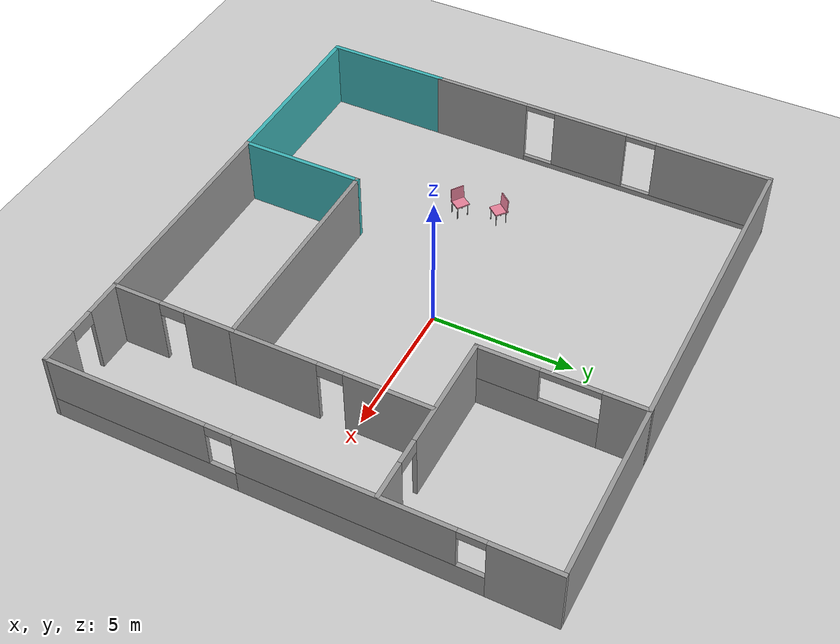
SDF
<sdf version="1.6">
 <world name="default">
  <model name="ground_plane">
   <static>1</static>
   <link name="link">
    <collision name="collision">
     <geometry><plane><normal>0 0 1</normal><size>100 100</size></plane></geometry>
     <surface>
      <contact><collide_bitmask>65535</collide_bitmask></contact>
      <friction><ode><mu>100</mu><mu2>50</mu2></ode></friction>
     </surface>
    </collision>
    <visual name="visual">
     <cast_shadows>0</cast_shadows>
     <geometry><plane><normal>0 0 1</normal><size>100 100</size></plane></geometry>
     <material>
      <script><uri>file://media/materials/scripts/gazebo.material</uri><name>Gazebo/Grey</name></script>
     </material>
    </visual>
   </link>
  </model>
  <model name="federicos_house">
   <pose>0.00944 -0.095201 0 0 -0 0</pose>
   <link name="Wall_11">
    <pose>8.85021 -0.00256 0 0 -0 -1.5708</pose>
    <visual name="Wall_11_Visual_0">
     <pose>-7.33583 0 1.25 0 -0 0</pose>
     <geometry><box><size>2.32835 0.15 2.5</size></box></geometry>
     <material>
      <script><uri>file://media/materials/scripts/gazebo.material</uri><name>Gazebo/Grey</name></script>
      <ambient>0.952941 0.952941 0.952941 1</ambient>
     </material>
     <meta><layer>0</layer></meta>
    </visual>
    <collision name="Wall_11_Collision_0">
     <geometry><box><size>2.32835 0.15 2.5</size></box></geometry>
     <pose>-7.33583 0 1.25 0 -0 0</pose>
    </collision>
    <visual name="Wall_11_Visual_1">
     <pose>-2.14939 0 0.45 0 -0 0</pose>
     <geometry><box><size>8.04452 0.15 0.9</size></box></geometry>
     <material>
      <script><uri>file://media/materials/scripts/gazebo.material</uri><name>Gazebo/Grey</name></script>
      <ambient>0.952941 0.952941 0.952941 1</ambient>
     </material>
     <meta><layer>0</layer></meta>
    </visual>
    <collision name="Wall_11_Collision_1">
     <geometry><box><size>8.04452 0.15 0.9</size></box></geometry>
     <pose>-2.14939 0 0.45 0 -0 0</pose>
    </collision>
    <visual name="Wall_11_Visual_2">
     <pose>5.18643 0 0.4 0 -0 0</pose>
     <geometry><box><size>6.62713 0.15 0.8</size></box></geometry>
     <material>
      <script><uri>file://media/materials/scripts/gazebo.material</uri><name>Gazebo/Grey</name></script>
      <ambient>0.952941 0.952941 0.952941 1</ambient>
     </material>
     <meta><layer>0</layer></meta>
    </visual>
    <collision name="Wall_11_Collision_2">
     <geometry><box><size>6.62713 0.15 0.8</size></box></geometry>
     <pose>5.18643 0 0.4 0 -0 0</pose>
    </collision>
    <visual name="Wall_11_Visual_3">
     <pose>5.63643 0 1.65 0 -0 0</pose>
     <geometry><box><size>5.72713 0.15 1.7</size></box></geometry>
     <material>
      <script><uri>file://media/materials/scripts/gazebo.material</uri><name>Gazebo/Grey</name></script>
      <ambient>0.952941 0.952941 0.952941 1</ambient>
     </material>
     <meta><layer>0</layer></meta>
    </visual>
    <collision name="Wall_11_Collision_3">
     <geometry><box><size>5.72713 0.15 1.7</size></box></geometry>
     <pose>5.63643 0 1.65 0 -0 0</pose>
    </collision>
    <visual name="Wall_11_Visual_4">
     <pose>-1.69939 0 1.7 0 -0 0</pose>
     <geometry><box><size>7.14452 0.15 1.6</size></box></geometry>
     <material>
      <script><uri>file://media/materials/scripts/gazebo.material</uri><name>Gazebo/Grey</name></script>
      <ambient>0.952941 0.952941 0.952941 1</ambient>
     </material>
     <meta><layer>0</layer></meta>
    </visual>
    <collision name="Wall_11_Collision_4">
     <geometry><box><size>7.14452 0.15 1.6</size></box></geometry>
     <pose>-1.69939 0 1.7 0 -0 0</pose>
    </collision>
    <visual name="Wall_11_Visual_5">
     <pose>2.32287 0 2.3 0 -0 0</pose>
     <geometry><box><size>0.9 0.15 0.4</size></box></geometry>
     <material>
      <script><uri>file://media/materials/scripts/gazebo.material</uri><name>Gazebo/Grey</name></script>
      <ambient>0.952941 0.952941 0.952941 1</ambient>
     </material>
     <meta><layer>0</layer></meta>
    </visual>
    <collision name="Wall_11_Collision_5">
     <geometry><box><size>0.9 0.15 0.4</size></box></geometry>
     <pose>2.32287 0 2.3 0 -0 0</pose>
    </collision>
    <visual name="Wall_11_Visual_6">
     <pose>-5.72165 0 2.35 0 -0 0</pose>
     <geometry><box><size>0.9 0.15 0.3</size></box></geometry>
     <material>
      <script><uri>file://media/materials/scripts/gazebo.material</uri><name>Gazebo/Grey</name></script>
      <ambient>0.952941 0.952941 0.952941 1</ambient>
     </material>
     <meta><layer>0</layer></meta>
    </visual>
    <collision name="Wall_11_Collision_6">
     <geometry><box><size>0.9 0.15 0.3</size></box></geometry>
     <pose>-5.72165 0 2.35 0 -0 0</pose>
    </collision>
   </link>
   <link name="Wall_12">
    <pose>3.17521 -8.42756 0 0 -0 3.14159</pose>
    <visual name="Wall_12_Visual_0">
     <pose>-5.0744 0 1.25 0 -0 0</pose>
     <geometry><box><size>1.35119 0.15 2.5</size></box></geometry>
     <material>
      <script><uri>file://media/materials/scripts/gazebo.material</uri><name>Gazebo/Grey</name></script>
      <ambient>0.952941 0.952941 0.952941 1</ambient>
     </material>
     <meta><layer>0</layer></meta>
    </visual>
    <collision name="Wall_12_Collision_0">
     <geometry><box><size>1.35119 0.15 2.5</size></box></geometry>
     <pose>-5.0744 0 1.25 0 -0 0</pose>
    </collision>
    <visual name="Wall_12_Visual_1">
     <pose>1.1256 0 1.25 0 -0 0</pose>
     <geometry><box><size>9.24881 0.15 2.5</size></box></geometry>
     <material>
      <script><uri>file://media/materials/scripts/gazebo.material</uri><name>Gazebo/Grey</name></script>
      <ambient>0.952941 0.952941 0.952941 1</ambient>
     </material>
     <meta><layer>0</layer></meta>
    </visual>
    <collision name="Wall_12_Collision_1">
     <geometry><box><size>9.24881 0.15 2.5</size></box></geometry>
     <pose>1.1256 0 1.25 0 -0 0</pose>
    </collision>
    <visual name="Wall_12_Visual_2">
     <pose>-3.94881 0 2.25 0 -0 0</pose>
     <geometry><box><size>0.9 0.15 0.5</size></box></geometry>
     <material>
      <script><uri>file://media/materials/scripts/gazebo.material</uri><name>Gazebo/Grey</name></script>
      <ambient>0.952941 0.952941 0.952941 1</ambient>
     </material>
     <meta><layer>0</layer></meta>
    </visual>
    <collision name="Wall_12_Collision_2">
     <geometry><box><size>0.9 0.15 0.5</size></box></geometry>
     <pose>-3.94881 0 2.25 0 -0 0</pose>
    </collision>
   </link>
   <link name="Wall_13">
    <collision name="Wall_13_Collision">
     <geometry><box><size>6.5 0.15 2.5</size></box></geometry>
     <pose>0 0 1.25 0 -0 0</pose>
    </collision>
    <visual name="Wall_13_Visual">
     <pose>0 0 1.25 0 -0 0</pose>
     <geometry><box><size>6.5 0.15 2.5</size></box></geometry>
     <material>
      <script><uri>file://media/materials/scripts/gazebo.material</uri><name>Gazebo/Grey</name></script>
      <ambient>0.239216 0.705882 0.713726 1</ambient>
     </material>
     <meta><layer>0</layer></meta>
    </visual>
    <pose>-5.67479 -8.42756 0 0 -0 3.14159</pose>
   </link>
   <link name="Wall_18">
    <collision name="Wall_18_Collision">
     <geometry><box><size>4.5 0.15 2.5</size></box></geometry>
     <pose>0 0 1.25 0 -0 0</pose>
    </collision>
    <visual name="Wall_18_Visual">
     <pose>0 0 1.25 0 -0 0</pose>
     <geometry><box><size>4.5 0.15 2.5</size></box></geometry>
     <material>
      <script><uri>file://media/materials/scripts/gazebo.material</uri><name>Gazebo/Grey</name></script>
      <ambient>0.239216 0.705882 0.713726 1</ambient>
     </material>
     <meta><layer>0</layer></meta>
    </visual>
    <pose>-8.84979 -6.25256 0 0 -0 1.5708</pose>
   </link>
   <link name="Wall_19">
    <pose>-8.85 2.17222 0 0 -0 1.57083</pose>
    <visual name="Wall_19_Visual_0">
     <pose>-4.55138 0 1.25 0 -0 0</pose>
     <geometry><box><size>3.54679 0.15 2.5</size></box></geometry>
     <material>
      <script><uri>file://media/materials/scripts/gazebo.material</uri><name>Gazebo/Grey</name></script>
      <ambient>0.952941 0.952941 0.952941 1</ambient>
     </material>
     <meta><layer>0</layer></meta>
    </visual>
    <collision name="Wall_19_Collision_0">
     <geometry><box><size>3.54679 0.15 2.5</size></box></geometry>
     <pose>-4.55138 0 1.25 0 -0 0</pose>
    </collision>
    <visual name="Wall_19_Visual_1">
     <pose>1.7734 0 0.1 0 -0 0</pose>
     <geometry><box><size>9.10277 0.15 0.2</size></box></geometry>
     <material>
      <script><uri>file://media/materials/scripts/gazebo.material</uri><name>Gazebo/Grey</name></script>
      <ambient>0.952941 0.952941 0.952941 1</ambient>
     </material>
     <meta><layer>0</layer></meta>
    </visual>
    <collision name="Wall_19_Collision_1">
     <geometry><box><size>9.10277 0.15 0.2</size></box></geometry>
     <pose>1.7734 0 0.1 0 -0 0</pose>
    </collision>
    <visual name="Wall_19_Visual_2">
     <pose>-0.320942 0 1.35 0 -0 0</pose>
     <geometry><box><size>2.71409 0.15 2.3</size></box></geometry>
     <material>
      <script><uri>file://media/materials/scripts/gazebo.material</uri><name>Gazebo/Grey</name></script>
      <ambient>0.952941 0.952941 0.952941 1</ambient>
     </material>
     <meta><layer>0</layer></meta>
    </visual>
    <collision name="Wall_19_Collision_2">
     <geometry><box><size>2.71409 0.15 2.3</size></box></geometry>
     <pose>-0.320942 0 1.35 0 -0 0</pose>
    </collision>
    <visual name="Wall_19_Visual_3">
     <pose>4.23044 0 1.35 0 -0 0</pose>
     <geometry><box><size>4.18867 0.15 2.3</size></box></geometry>
     <material>
      <script><uri>file://media/materials/scripts/gazebo.material</uri><name>Gazebo/Grey</name></script>
      <ambient>0.952941 0.952941 0.952941 1</ambient>
     </material>
     <meta><layer>0</layer></meta>
    </visual>
    <collision name="Wall_19_Collision_3">
     <geometry><box><size>4.18867 0.15 2.3</size></box></geometry>
     <pose>4.23044 0 1.35 0 -0 0</pose>
    </collision>
    <visual name="Wall_19_Visual_4">
     <pose>-2.22799 0 2.4 0 -0 0</pose>
     <geometry><box><size>1.1 0.15 0.2</size></box></geometry>
     <material>
      <script><uri>file://media/materials/scripts/gazebo.material</uri><name>Gazebo/Grey</name></script>
      <ambient>0.952941 0.952941 0.952941 1</ambient>
     </material>
     <meta><layer>0</layer></meta>
    </visual>
    <collision name="Wall_19_Collision_4">
     <geometry><box><size>1.1 0.15 0.2</size></box></geometry>
     <pose>-2.22799 0 2.4 0 -0 0</pose>
    </collision>
    <visual name="Wall_19_Visual_5">
     <pose>1.58611 0 2.4 0 -0 0</pose>
     <geometry><box><size>1.1 0.15 0.2</size></box></geometry>
     <material>
      <script><uri>file://media/materials/scripts/gazebo.material</uri><name>Gazebo/Grey</name></script>
      <ambient>0.952941 0.952941 0.952941 1</ambient>
     </material>
     <meta><layer>0</layer></meta>
    </visual>
    <collision name="Wall_19_Collision_5">
     <geometry><box><size>1.1 0.15 0.2</size></box></geometry>
     <pose>1.58611 0 2.4 0 -0 0</pose>
    </collision>
   </link>
   <link name="Wall_20">
    <collision name="Wall_20_Collision">
     <geometry><box><size>17.85 0.15 2.5</size></box></geometry>
     <pose>0 0 1.25 0 -0 0</pose>
    </collision>
    <visual name="Wall_20_Visual">
     <pose>0 0 1.25 0 -0 0</pose>
     <geometry><box><size>17.85 0.15 2.5</size></box></geometry>
     <material>
      <script><uri>file://media/materials/scripts/gazebo.material</uri><name>Gazebo/Grey</name></script>
      <ambient>0.952941 0.952941 0.952941 1</ambient>
     </material>
     <meta><layer>0</layer></meta>
    </visual>
    <pose>-0.000205 8.422 0 0 -0 0</pose>
   </link>
   <link name="Wall_22">
    <collision name="Wall_22_Collision">
     <geometry><box><size>4.5 0.15 2.5</size></box></geometry>
     <pose>0 0 1.25 0 -0 0</pose>
    </collision>
    <visual name="Wall_22_Visual">
     <pose>0 0 1.25 0 -0 0</pose>
     <geometry><box><size>4.5 0.15 2.5</size></box></geometry>
     <material>
      <script><uri>file://media/materials/scripts/gazebo.material</uri><name>Gazebo/Grey</name></script>
      <ambient>0.239216 0.705882 0.713726 1</ambient>
     </material>
     <meta><layer>0</layer></meta>
    </visual>
    <pose>-2.5 -6.25278 0 0 -0 1.57089</pose>
   </link>
   <link name="Wall_24">
    <collision name="Wall_24_Collision">
     <geometry><box><size>8 0.15 2.5</size></box></geometry>
     <pose>0 0 1.25 0 -0 0</pose>
    </collision>
    <visual name="Wall_24_Visual">
     <pose>0 0 1.25 0 -0 0</pose>
     <geometry><box><size>8 0.15 2.5</size></box></geometry>
     <material>
      <script><uri>file://media/materials/scripts/gazebo.material</uri><name>Gazebo/Grey</name></script>
      <ambient>0.952941 0.952941 0.952941 1</ambient>
     </material>
     <meta><layer>0</layer></meta>
    </visual>
    <pose>1.4248 -4.078 0 0 -0 0</pose>
   </link>
   <link name="Wall_25">
    <pose>5.3498 -6.253 0 0 -0 -1.5708</pose>
    <visual name="Wall_25_Visual_0">
     <pose>-1.34853 0 1.25 0 -0 0</pose>
     <geometry><box><size>1.80293 0.15 2.5</size></box></geometry>
     <material>
      <script><uri>file://media/materials/scripts/gazebo.material</uri><name>Gazebo/Grey</name></script>
      <ambient>0.952941 0.952941 0.952941 1</ambient>
     </material>
     <meta><layer>0</layer></meta>
    </visual>
    <collision name="Wall_25_Collision_0">
     <geometry><box><size>1.80293 0.15 2.5</size></box></geometry>
     <pose>-1.34853 0 1.25 0 -0 0</pose>
    </collision>
    <visual name="Wall_25_Visual_1">
     <pose>1.35147 0 1.25 0 -0 0</pose>
     <geometry><box><size>1.79707 0.15 2.5</size></box></geometry>
     <material>
      <script><uri>file://media/materials/scripts/gazebo.material</uri><name>Gazebo/Grey</name></script>
      <ambient>0.952941 0.952941 0.952941 1</ambient>
     </material>
     <meta><layer>0</layer></meta>
    </visual>
    <collision name="Wall_25_Collision_1">
     <geometry><box><size>1.79707 0.15 2.5</size></box></geometry>
     <pose>1.35147 0 1.25 0 -0 0</pose>
    </collision>
    <visual name="Wall_25_Visual_2">
     <pose>0.002931 0 2.25 0 -0 0</pose>
     <geometry><box><size>0.9 0.15 0.5</size></box></geometry>
     <material>
      <script><uri>file://media/materials/scripts/gazebo.material</uri><name>Gazebo/Grey</name></script>
      <ambient>0.952941 0.952941 0.952941 1</ambient>
     </material>
     <meta><layer>0</layer></meta>
    </visual>
    <collision name="Wall_25_Collision_2">
     <geometry><box><size>0.9 0.15 0.5</size></box></geometry>
     <pose>0.002931 0 2.25 0 -0 0</pose>
    </collision>
   </link>
   <link name="Wall_29">
    <pose>2.5698 5.628 0 0 -0 -1.5708</pose>
    <visual name="Wall_29_Visual_0">
     <pose>-2.0935 0 1.25 0 -0 0</pose>
     <geometry><box><size>1.563 0.15 2.5</size></box></geometry>
     <material>
      <script><uri>file://media/materials/scripts/gazebo.material</uri><name>Gazebo/Grey</name></script>
      <ambient>0.952941 0.952941 0.952941 1</ambient>
     </material>
     <meta><layer>0</layer></meta>
    </visual>
    <collision name="Wall_29_Collision_0">
     <geometry><box><size>1.563 0.15 2.5</size></box></geometry>
     <pose>-2.0935 0 1.25 0 -0 0</pose>
    </collision>
    <visual name="Wall_29_Visual_1">
     <pose>0.7815 0 0.575 0 -0 0</pose>
     <geometry><box><size>4.187 0.15 1.15</size></box></geometry>
     <material>
      <script><uri>file://media/materials/scripts/gazebo.material</uri><name>Gazebo/Grey</name></script>
      <ambient>0.952941 0.952941 0.952941 1</ambient>
     </material>
     <meta><layer>0</layer></meta>
    </visual>
    <collision name="Wall_29_Collision_1">
     <geometry><box><size>4.187 0.15 1.15</size></box></geometry>
     <pose>0.7815 0 0.575 0 -0 0</pose>
    </collision>
    <visual name="Wall_29_Visual_2">
     <pose>1.7815 0 1.825 0 -0 0</pose>
     <geometry><box><size>2.187 0.15 1.35</size></box></geometry>
     <material>
      <script><uri>file://media/materials/scripts/gazebo.material</uri><name>Gazebo/Grey</name></script>
      <ambient>0.952941 0.952941 0.952941 1</ambient>
     </material>
     <meta><layer>0</layer></meta>
    </visual>
    <collision name="Wall_29_Collision_2">
     <geometry><box><size>2.187 0.15 1.35</size></box></geometry>
     <pose>1.7815 0 1.825 0 -0 0</pose>
    </collision>
    <visual name="Wall_29_Visual_3">
     <pose>-0.312 0 2.375 0 -0 0</pose>
     <geometry><box><size>2 0.15 0.25</size></box></geometry>
     <material>
      <script><uri>file://media/materials/scripts/gazebo.material</uri><name>Gazebo/Grey</name></script>
      <ambient>0.952941 0.952941 0.952941 1</ambient>
     </material>
     <meta><layer>0</layer></meta>
    </visual>
    <collision name="Wall_29_Collision_3">
     <geometry><box><size>2 0.15 0.25</size></box></geometry>
     <pose>-0.312 0 2.375 0 -0 0</pose>
    </collision>
   </link>
   <link name="Wall_32">
    <pose>5.3498 -0.653 0 0 -0 1.5708</pose>
    <visual name="Wall_32_Visual_0">
     <pose>-1.97184 0 1.25 0 -0 0</pose>
     <geometry><box><size>3.05631 0.15 2.5</size></box></geometry>
     <material>
      <script><uri>file://media/materials/scripts/gazebo.material</uri><name>Gazebo/Grey</name></script>
      <ambient>0.952941 0.952941 0.952941 1</ambient>
     </material>
     <meta><layer>0</layer></meta>
    </visual>
    <collision name="Wall_32_Collision_0">
     <geometry><box><size>3.05631 0.15 2.5</size></box></geometry>
     <pose>-1.97184 0 1.25 0 -0 0</pose>
    </collision>
    <visual name="Wall_32_Visual_1">
     <pose>1.97816 0 1.25 0 -0 0</pose>
     <geometry><box><size>3.04369 0.15 2.5</size></box></geometry>
     <material>
      <script><uri>file://media/materials/scripts/gazebo.material</uri><name>Gazebo/Grey</name></script>
      <ambient>0.952941 0.952941 0.952941 1</ambient>
     </material>
     <meta><layer>0</layer></meta>
    </visual>
    <collision name="Wall_32_Collision_1">
     <geometry><box><size>3.04369 0.15 2.5</size></box></geometry>
     <pose>1.97816 0 1.25 0 -0 0</pose>
    </collision>
    <visual name="Wall_32_Visual_2">
     <pose>0.006313 0 2.25 0 -0 0</pose>
     <geometry><box><size>0.9 0.15 0.5</size></box></geometry>
     <material>
      <script><uri>file://media/materials/scripts/gazebo.material</uri><name>Gazebo/Grey</name></script>
      <ambient>0.952941 0.952941 0.952941 1</ambient>
     </material>
     <meta><layer>0</layer></meta>
    </visual>
    <collision name="Wall_32_Collision_2">
     <geometry><box><size>0.9 0.15 0.5</size></box></geometry>
     <pose>0.006313 0 2.25 0 -0 0</pose>
    </collision>
   </link>
   <link name="Wall_34">
    <pose>5.6948 2.828 0 0 -0 0</pose>
    <visual name="Wall_34_Visual_0">
     <pose>-1.13148 0 1.25 0 -0 0</pose>
     <geometry><box><size>4.13704 0.15 2.5</size></box></geometry>
     <material>
      <script><uri>file://media/materials/scripts/gazebo.material</uri><name>Gazebo/Grey</name></script>
      <ambient>0.827451 0.843137 0.811765 1</ambient>
     </material>
     <meta><layer>0</layer></meta>
    </visual>
    <collision name="Wall_34_Collision_0">
     <geometry><box><size>4.13704 0.15 2.5</size></box></geometry>
     <pose>-1.13148 0 1.25 0 -0 0</pose>
    </collision>
    <visual name="Wall_34_Visual_1">
     <pose>2.51852 0 1.25 0 -0 0</pose>
     <geometry><box><size>1.36296 0.15 2.5</size></box></geometry>
     <material>
      <script><uri>file://media/materials/scripts/gazebo.material</uri><name>Gazebo/Grey</name></script>
      <ambient>0.827451 0.843137 0.811765 1</ambient>
     </material>
     <meta><layer>0</layer></meta>
    </visual>
    <collision name="Wall_34_Collision_1">
     <geometry><box><size>1.36296 0.15 2.5</size></box></geometry>
     <pose>2.51852 0 1.25 0 -0 0</pose>
    </collision>
    <visual name="Wall_34_Visual_2">
     <pose>1.38704 0 2.25 0 -0 0</pose>
     <geometry><box><size>0.9 0.15 0.5</size></box></geometry>
     <material>
      <script><uri>file://media/materials/scripts/gazebo.material</uri><name>Gazebo/Grey</name></script>
      <ambient>0.827451 0.843137 0.811765 1</ambient>
     </material>
     <meta><layer>0</layer></meta>
    </visual>
    <collision name="Wall_34_Collision_2">
     <geometry><box><size>0.9 0.15 0.5</size></box></geometry>
     <pose>1.38704 0 2.25 0 -0 0</pose>
    </collision>
   </link>
   <static>1</static>
  </model>
  <model name="my_chair_0">
   <link name="link">
    <inertial>
     <mass>1</mass>
     <inertia>
      <ixx>0.166667</ixx>
      <ixy>0</ixy>
      <ixz>0</ixz>
      <iyy>0.166667</iyy>
      <iyz>0</iyz>
      <izz>0.166667</izz>
     </inertia>
    </inertial>
    <gravity>0</gravity>
    <visual name="visual">
     <geometry><box><size>0.5 0.5 0.05</size></box></geometry>
     <material>
      <script><name>Gazebo/Grey</name><uri>file://media/materials/scripts/gazebo.material</uri></script>
      <shader type="pixel"><normal_map>__default__</normal_map></shader>
      <ambient>0.9 0.5 0.6 1</ambient>
      <diffuse>0.9 0.5 0.6 1</diffuse>
      <specular>0.01 0.01 0.01 1</specular>
      <emissive>0 0 0 1</emissive>
     </material>
     <pose>0 0 0.5 0 -0 0</pose>
    </visual>
    <collision name="collision">
     <pose>0 0 0.5 0 -0 0</pose>
     <geometry><box><size>0.5 0.5 0.05</size></box></geometry>
     <surface>
      <friction>
       <ode><mu>1</mu><mu2>1</mu2><fdir1>0 0 0</fdir1><slip1>0</slip1><slip2>0</slip2></ode>
       <torsional>
        <coefficient>1</coefficient>
        <patch_radius>0</patch_radius>
        <surface_radius>0</surface_radius>
        <use_patch_radius>1</use_patch_radius>
        <ode><slip>0</slip></ode>
       </torsional>
      </friction>
      <bounce><restitution_coefficient>0</restitution_coefficient><threshold>1e+06</threshold></bounce>
      <contact>
       <collide_without_contact>0</collide_without_contact>
       <collide_without_contact_bitmask>1</collide_without_contact_bitmask>
       <collide_bitmask>1</collide_bitmask>
       <ode>
        <soft_cfm>0</soft_cfm>
        <soft_erp>0.2</soft_erp>
        <kp>1e+13</kp>
        <kd>1</kd>
        <max_vel>0.01</max_vel>
        <min_depth>0</min_depth>
       </ode>
       <bullet>
        <split_impulse>1</split_impulse>
        <split_impulse_penetration_threshold>-0.01</split_impulse_penetration_threshold>
        <soft_cfm>0</soft_cfm>
        <soft_erp>0.2</soft_erp>
        <kp>1e+13</kp>
        <kd>1</kd>
       </bullet>
      </contact>
     </surface>
    </collision>
   </link>
   <link name="link_0">
    <inertial>
     <mass>1</mass>
     <inertia><ixx>0.145833</ixx><ixy>0</ixy><ixz>0</ixz><iyy>0.145833</iyy><iyz>0</iyz><izz>0.125</izz></inertia>
    </inertial>
    <pose>-0.200315 -0.184767 -0.272701 -0 -0 -0</pose>
    <gravity>0</gravity>
    <visual name="visual">
     <pose>0 0 0.5 0 -0 0</pose>
     <geometry><cylinder><radius>0.013</radius><length>0.5</length></cylinder></geometry>
     <material>
      <lighting>1</lighting>
      <script><uri>file://media/materials/scripts/gazebo.material</uri><name>Gazebo/Grey</name></script>
      <shader type="pixel"><normal_map>__default__</normal_map></shader>
      <ambient>0.3 0.3 0.3 1</ambient>
      <diffuse>0.7 0.7 0.7 1</diffuse>
      <specular>0.01 0.01 0.01 1</specular>
      <emissive>0 0 0 1</emissive>
     </material>
    </visual>
    <collision name="collision">
     <pose>0 0 0.5 0 -0 0</pose>
     <geometry><cylinder><radius>0.013</radius><length>0.5</length></cylinder></geometry>
     <surface>
      <friction>
       <ode><mu>1</mu><mu2>1</mu2><fdir1>0 0 0</fdir1><slip1>0</slip1><slip2>0</slip2></ode>
       <torsional>
        <coefficient>1</coefficient>
        <patch_radius>0</patch_radius>
        <surface_radius>0</surface_radius>
        <use_patch_radius>1</use_patch_radius>
        <ode><slip>0</slip></ode>
       </torsional>
      </friction>
      <bounce><restitution_coefficient>0</restitution_coefficient><threshold>1e+06</threshold></bounce>
      <contact>
       <collide_without_contact>0</collide_without_contact>
       <collide_without_contact_bitmask>1</collide_without_contact_bitmask>
       <collide_bitmask>1</collide_bitmask>
       <ode>
        <soft_cfm>0</soft_cfm>
        <soft_erp>0.2</soft_erp>
        <kp>1e+13</kp>
        <kd>1</kd>
        <max_vel>0.01</max_vel>
        <min_depth>0</min_depth>
       </ode>
       <bullet>
        <split_impulse>1</split_impulse>
        <split_impulse_penetration_threshold>-0.01</split_impulse_penetration_threshold>
        <soft_cfm>0</soft_cfm>
        <soft_erp>0.2</soft_erp>
        <kp>1e+13</kp>
        <kd>1</kd>
       </bullet>
      </contact>
     </surface>
    </collision>
   </link>
   <link name="link_0_clone">
    <inertial>
     <mass>1</mass>
     <inertia><ixx>0.145833</ixx><ixy>0</ixy><ixz>0</ixz><iyy>0.145833</iyy><iyz>0</iyz><izz>0.125</izz></inertia>
    </inertial>
    <pose>-0.198839 0.194466 -0.272701 -0 -0 -0</pose>
    <gravity>0</gravity>
    <visual name="visual">
     <pose>0 0 0.5 0 -0 0</pose>
     <geometry><cylinder><radius>0.013</radius><length>0.5</length></cylinder></geometry>
     <material>
      <lighting>1</lighting>
      <script><uri>file://media/materials/scripts/gazebo.material</uri><name>Gazebo/Grey</name></script>
      <shader type="pixel"><normal_map>__default__</normal_map></shader>
      <ambient>0.3 0.3 0.3 1</ambient>
      <diffuse>0.7 0.7 0.7 1</diffuse>
      <specular>0.01 0.01 0.01 1</specular>
      <emissive>0 0 0 1</emissive>
     </material>
    </visual>
    <collision name="collision">
     <pose>0 0 0.5 0 -0 0</pose>
     <geometry><cylinder><radius>0.013</radius><length>0.5</length></cylinder></geometry>
     <surface>
      <friction>
       <ode><mu>1</mu><mu2>1</mu2><fdir1>0 0 0</fdir1><slip1>0</slip1><slip2>0</slip2></ode>
       <torsional>
        <coefficient>1</coefficient>
        <patch_radius>0</patch_radius>
        <surface_radius>0</surface_radius>
        <use_patch_radius>1</use_patch_radius>
        <ode><slip>0</slip></ode>
       </torsional>
      </friction>
      <bounce><restitution_coefficient>0</restitution_coefficient><threshold>1e+06</threshold></bounce>
      <contact>
       <collide_without_contact>0</collide_without_contact>
       <collide_without_contact_bitmask>1</collide_without_contact_bitmask>
       <collide_bitmask>1</collide_bitmask>
       <ode>
        <soft_cfm>0</soft_cfm>
        <soft_erp>0.2</soft_erp>
        <kp>1e+13</kp>
        <kd>1</kd>
        <max_vel>0.01</max_vel>
        <min_depth>0</min_depth>
       </ode>
       <bullet>
        <split_impulse>1</split_impulse>
        <split_impulse_penetration_threshold>-0.01</split_impulse_penetration_threshold>
        <soft_cfm>0</soft_cfm>
        <soft_erp>0.2</soft_erp>
        <kp>1e+13</kp>
        <kd>1</kd>
       </bullet>
      </contact>
     </surface>
    </collision>
   </link>
   <link name="link_0_clone_0">
    <inertial>
     <mass>1</mass>
     <inertia><ixx>0.145833</ixx><ixy>0</ixy><ixz>0</ixz><iyy>0.145833</iyy><iyz>0</iyz><izz>0.125</izz></inertia>
    </inertial>
    <pose>0.211914 -0.198881 -0.272701 -0 -0 -0</pose>
    <gravity>0</gravity>
    <visual name="visual">
     <pose>0 0 0.5 0 -0 0</pose>
     <geometry><cylinder><radius>0.013</radius><length>0.5</length></cylinder></geometry>
     <material>
      <lighting>1</lighting>
      <script><uri>file://media/materials/scripts/gazebo.material</uri><name>Gazebo/Grey</name></script>
      <shader type="pixel"><normal_map>__default__</normal_map></shader>
      <ambient>0.3 0.3 0.3 1</ambient>
      <diffuse>0.7 0.7 0.7 1</diffuse>
      <specular>0.01 0.01 0.01 1</specular>
      <emissive>0 0 0 1</emissive>
     </material>
    </visual>
    <collision name="collision">
     <pose>0 0 0.5 0 -0 0</pose>
     <geometry><cylinder><radius>0.013</radius><length>0.5</length></cylinder></geometry>
     <surface>
      <friction>
       <ode><mu>1</mu><mu2>1</mu2><fdir1>0 0 0</fdir1><slip1>0</slip1><slip2>0</slip2></ode>
       <torsional>
        <coefficient>1</coefficient>
        <patch_radius>0</patch_radius>
        <surface_radius>0</surface_radius>
        <use_patch_radius>1</use_patch_radius>
        <ode><slip>0</slip></ode>
       </torsional>
      </friction>
      <bounce><restitution_coefficient>0</restitution_coefficient><threshold>1e+06</threshold></bounce>
      <contact>
       <collide_without_contact>0</collide_without_contact>
       <collide_without_contact_bitmask>1</collide_without_contact_bitmask>
       <collide_bitmask>1</collide_bitmask>
       <ode>
        <soft_cfm>0</soft_cfm>
        <soft_erp>0.2</soft_erp>
        <kp>1e+13</kp>
        <kd>1</kd>
        <max_vel>0.01</max_vel>
        <min_depth>0</min_depth>
       </ode>
       <bullet>
        <split_impulse>1</split_impulse>
        <split_impulse_penetration_threshold>-0.01</split_impulse_penetration_threshold>
        <soft_cfm>0</soft_cfm>
        <soft_erp>0.2</soft_erp>
        <kp>1e+13</kp>
        <kd>1</kd>
       </bullet>
      </contact>
     </surface>
    </collision>
   </link>
   <link name="link_0_clone_1">
    <inertial>
     <mass>1</mass>
     <inertia><ixx>0.145833</ixx><ixy>0</ixy><ixz>0</ixz><iyy>0.145833</iyy><iyz>0</iyz><izz>0.125</izz></inertia>
    </inertial>
    <pose>0.207422 0.203987 -0.272701 -0 -0 -0</pose>
    <gravity>0</gravity>
    <visual name="visual">
     <pose>0 0 0.5 0 -0 0</pose>
     <geometry><cylinder><radius>0.013</radius><length>0.5</length></cylinder></geometry>
     <material>
      <lighting>1</lighting>
      <script><uri>file://media/materials/scripts/gazebo.material</uri><name>Gazebo/Grey</name></script>
      <shader type="pixel"><normal_map>__default__</normal_map></shader>
      <ambient>0.3 0.3 0.3 1</ambient>
      <diffuse>0.7 0.7 0.7 1</diffuse>
      <specular>0.01 0.01 0.01 1</specular>
      <emissive>0 0 0 1</emissive>
     </material>
    </visual>
    <collision name="collision">
     <pose>0 0 0.5 0 -0 0</pose>
     <geometry><cylinder><radius>0.013</radius><length>0.5</length></cylinder></geometry>
     <surface>
      <friction>
       <ode><mu>1</mu><mu2>1</mu2><fdir1>0 0 0</fdir1><slip1>0</slip1><slip2>0</slip2></ode>
       <torsional>
        <coefficient>1</coefficient>
        <patch_radius>0</patch_radius>
        <surface_radius>0</surface_radius>
        <use_patch_radius>1</use_patch_radius>
        <ode><slip>0</slip></ode>
       </torsional>
      </friction>
      <bounce><restitution_coefficient>0</restitution_coefficient><threshold>1e+06</threshold></bounce>
      <contact>
       <collide_without_contact>0</collide_without_contact>
       <collide_without_contact_bitmask>1</collide_without_contact_bitmask>
       <collide_bitmask>1</collide_bitmask>
       <ode>
        <soft_cfm>0</soft_cfm>
        <soft_erp>0.2</soft_erp>
        <kp>1e+13</kp>
        <kd>1</kd>
        <max_vel>0.01</max_vel>
        <min_depth>0</min_depth>
       </ode>
       <bullet>
        <split_impulse>1</split_impulse>
        <split_impulse_penetration_threshold>-0.01</split_impulse_penetration_threshold>
        <soft_cfm>0</soft_cfm>
        <soft_erp>0.2</soft_erp>
        <kp>1e+13</kp>
        <kd>1</kd>
       </bullet>
      </contact>
     </surface>
    </collision>
   </link>
   <link name="link_clone">
    <inertial>
     <mass>1</mass>
     <inertia>
      <ixx>0.166667</ixx>
      <ixy>0</ixy>
      <ixz>0</ixz>
      <iyy>0.166667</iyy>
      <iyz>0</iyz>
      <izz>0.166667</izz>
     </inertia>
    </inertial>
    <pose>-0.00806 -0.212496 0.264135 -0 -0 -0</pose>
    <gravity>0</gravity>
    <visual name="visual">
     <geometry><box><size>0.5 0.5 0.04</size></box></geometry>
     <material>
      <script><name>Gazebo/Grey</name><uri>file://media/materials/scripts/gazebo.material</uri></script>
      <shader type="pixel"><normal_map>__default__</normal_map></shader>
      <ambient>0.9 0.5 0.6 1</ambient>
      <diffuse>0.9 0.5 0.6 1</diffuse>
      <specular>0.01 0.01 0.01 1</specular>
      <emissive>0 0 0 1</emissive>
     </material>
     <pose>0 0 0.5 -1.5 0 0</pose>
    </visual>
    <collision name="collision">
     <pose>0 0 0.5 -1.5 0 0</pose>
     <geometry><box><size>0.5 0.5 0.04</size></box></geometry>
     <surface>
      <friction>
       <ode><mu>1</mu><mu2>1</mu2><fdir1>0 0 0</fdir1><slip1>0</slip1><slip2>0</slip2></ode>
       <torsional>
        <coefficient>1</coefficient>
        <patch_radius>0</patch_radius>
        <surface_radius>0</surface_radius>
        <use_patch_radius>1</use_patch_radius>
        <ode><slip>0</slip></ode>
       </torsional>
      </friction>
      <bounce><restitution_coefficient>0</restitution_coefficient><threshold>1e+06</threshold></bounce>
      <contact>
       <collide_without_contact>0</collide_without_contact>
       <collide_without_contact_bitmask>1</collide_without_contact_bitmask>
       <collide_bitmask>1</collide_bitmask>
       <ode>
        <soft_cfm>0</soft_cfm>
        <soft_erp>0.2</soft_erp>
        <kp>1e+13</kp>
        <kd>1</kd>
        <max_vel>0.01</max_vel>
        <min_depth>0</min_depth>
       </ode>
       <bullet>
        <split_impulse>1</split_impulse>
        <split_impulse_penetration_threshold>-0.01</split_impulse_penetration_threshold>
        <soft_cfm>0</soft_cfm>
        <soft_erp>0.2</soft_erp>
        <kp>1e+13</kp>
        <kd>1</kd>
       </bullet>
      </contact>
     </surface>
    </collision>
   </link>
   <static>1</static>
   <pose>-5.05341 -1.50205 0 0 0 -0.61738</pose>
  </model>
  <model name="my_chair_1">
   <link name="link">
    <inertial>
     <mass>1</mass>
     <inertia>
      <ixx>0.166667</ixx>
      <ixy>0</ixy>
      <ixz>0</ixz>
      <iyy>0.166667</iyy>
      <iyz>0</iyz>
      <izz>0.166667</izz>
     </inertia>
    </inertial>
    <gravity>0</gravity>
    <visual name="visual">
     <geometry><box><size>0.5 0.5 0.05</size></box></geometry>
     <material>
      <script><name>Gazebo/Grey</name><uri>file://media/materials/scripts/gazebo.material</uri></script>
      <shader type="pixel"><normal_map>__default__</normal_map></shader>
      <ambient>0.9 0.5 0.6 1</ambient>
      <diffuse>0.9 0.5 0.6 1</diffuse>
      <specular>0.01 0.01 0.01 1</specular>
      <emissive>0 0 0 1</emissive>
     </material>
     <pose>0 0 0.5 0 -0 0</pose>
    </visual>
    <collision name="collision">
     <pose>0 0 0.5 0 -0 0</pose>
     <geometry><box><size>0.5 0.5 0.05</size></box></geometry>
     <surface>
      <friction>
       <ode><mu>1</mu><mu2>1</mu2><fdir1>0 0 0</fdir1><slip1>0</slip1><slip2>0</slip2></ode>
       <torsional>
        <coefficient>1</coefficient>
        <patch_radius>0</patch_radius>
        <surface_radius>0</surface_radius>
        <use_patch_radius>1</use_patch_radius>
        <ode><slip>0</slip></ode>
       </torsional>
      </friction>
      <bounce><restitution_coefficient>0</restitution_coefficient><threshold>1e+06</threshold></bounce>
      <contact>
       <collide_without_contact>0</collide_without_contact>
       <collide_without_contact_bitmask>1</collide_without_contact_bitmask>
       <collide_bitmask>1</collide_bitmask>
       <ode>
        <soft_cfm>0</soft_cfm>
        <soft_erp>0.2</soft_erp>
        <kp>1e+13</kp>
        <kd>1</kd>
        <max_vel>0.01</max_vel>
        <min_depth>0</min_depth>
       </ode>
       <bullet>
        <split_impulse>1</split_impulse>
        <split_impulse_penetration_threshold>-0.01</split_impulse_penetration_threshold>
        <soft_cfm>0</soft_cfm>
        <soft_erp>0.2</soft_erp>
        <kp>1e+13</kp>
        <kd>1</kd>
       </bullet>
      </contact>
     </surface>
    </collision>
   </link>
   <link name="link_0">
    <inertial>
     <mass>1</mass>
     <inertia><ixx>0.145833</ixx><ixy>0</ixy><ixz>0</ixz><iyy>0.145833</iyy><iyz>0</iyz><izz>0.125</izz></inertia>
    </inertial>
    <pose>-0.200315 -0.184767 -0.272701 -0 -0 -0</pose>
    <gravity>0</gravity>
    <visual name="visual">
     <pose>0 0 0.5 0 -0 0</pose>
     <geometry><cylinder><radius>0.013</radius><length>0.5</length></cylinder></geometry>
     <material>
      <lighting>1</lighting>
      <script><uri>file://media/materials/scripts/gazebo.material</uri><name>Gazebo/Grey</name></script>
      <shader type="pixel"><normal_map>__default__</normal_map></shader>
      <ambient>0.3 0.3 0.3 1</ambient>
      <diffuse>0.7 0.7 0.7 1</diffuse>
      <specular>0.01 0.01 0.01 1</specular>
      <emissive>0 0 0 1</emissive>
     </material>
    </visual>
    <collision name="collision">
     <pose>0 0 0.5 0 -0 0</pose>
     <geometry><cylinder><radius>0.013</radius><length>0.5</length></cylinder></geometry>
     <surface>
      <friction>
       <ode><mu>1</mu><mu2>1</mu2><fdir1>0 0 0</fdir1><slip1>0</slip1><slip2>0</slip2></ode>
       <torsional>
        <coefficient>1</coefficient>
        <patch_radius>0</patch_radius>
        <surface_radius>0</surface_radius>
        <use_patch_radius>1</use_patch_radius>
        <ode><slip>0</slip></ode>
       </torsional>
      </friction>
      <bounce><restitution_coefficient>0</restitution_coefficient><threshold>1e+06</threshold></bounce>
      <contact>
       <collide_without_contact>0</collide_without_contact>
       <collide_without_contact_bitmask>1</collide_without_contact_bitmask>
       <collide_bitmask>1</collide_bitmask>
       <ode>
        <soft_cfm>0</soft_cfm>
        <soft_erp>0.2</soft_erp>
        <kp>1e+13</kp>
        <kd>1</kd>
        <max_vel>0.01</max_vel>
        <min_depth>0</min_depth>
       </ode>
       <bullet>
        <split_impulse>1</split_impulse>
        <split_impulse_penetration_threshold>-0.01</split_impulse_penetration_threshold>
        <soft_cfm>0</soft_cfm>
        <soft_erp>0.2</soft_erp>
        <kp>1e+13</kp>
        <kd>1</kd>
       </bullet>
      </contact>
     </surface>
    </collision>
   </link>
   <link name="link_0_clone">
    <inertial>
     <mass>1</mass>
     <inertia><ixx>0.145833</ixx><ixy>0</ixy><ixz>0</ixz><iyy>0.145833</iyy><iyz>0</iyz><izz>0.125</izz></inertia>
    </inertial>
    <pose>-0.198839 0.194466 -0.272701 -0 -0 -0</pose>
    <gravity>0</gravity>
    <visual name="visual">
     <pose>0 0 0.5 0 -0 0</pose>
     <geometry><cylinder><radius>0.013</radius><length>0.5</length></cylinder></geometry>
     <material>
      <lighting>1</lighting>
      <script><uri>file://media/materials/scripts/gazebo.material</uri><name>Gazebo/Grey</name></script>
      <shader type="pixel"><normal_map>__default__</normal_map></shader>
      <ambient>0.3 0.3 0.3 1</ambient>
      <diffuse>0.7 0.7 0.7 1</diffuse>
      <specular>0.01 0.01 0.01 1</specular>
      <emissive>0 0 0 1</emissive>
     </material>
    </visual>
    <collision name="collision">
     <pose>0 0 0.5 0 -0 0</pose>
     <geometry><cylinder><radius>0.013</radius><length>0.5</length></cylinder></geometry>
     <surface>
      <friction>
       <ode><mu>1</mu><mu2>1</mu2><fdir1>0 0 0</fdir1><slip1>0</slip1><slip2>0</slip2></ode>
       <torsional>
        <coefficient>1</coefficient>
        <patch_radius>0</patch_radius>
        <surface_radius>0</surface_radius>
        <use_patch_radius>1</use_patch_radius>
        <ode><slip>0</slip></ode>
       </torsional>
      </friction>
      <bounce><restitution_coefficient>0</restitution_coefficient><threshold>1e+06</threshold></bounce>
      <contact>
       <collide_without_contact>0</collide_without_contact>
       <collide_without_contact_bitmask>1</collide_without_contact_bitmask>
       <collide_bitmask>1</collide_bitmask>
       <ode>
        <soft_cfm>0</soft_cfm>
        <soft_erp>0.2</soft_erp>
        <kp>1e+13</kp>
        <kd>1</kd>
        <max_vel>0.01</max_vel>
        <min_depth>0</min_depth>
       </ode>
       <bullet>
        <split_impulse>1</split_impulse>
        <split_impulse_penetration_threshold>-0.01</split_impulse_penetration_threshold>
        <soft_cfm>0</soft_cfm>
        <soft_erp>0.2</soft_erp>
        <kp>1e+13</kp>
        <kd>1</kd>
       </bullet>
      </contact>
     </surface>
    </collision>
   </link>
   <link name="link_0_clone_0">
    <inertial>
     <mass>1</mass>
     <inertia><ixx>0.145833</ixx><ixy>0</ixy><ixz>0</ixz><iyy>0.145833</iyy><iyz>0</iyz><izz>0.125</izz></inertia>
    </inertial>
    <pose>0.211914 -0.198881 -0.272701 -0 -0 -0</pose>
    <gravity>0</gravity>
    <visual name="visual">
     <pose>0 0 0.5 0 -0 0</pose>
     <geometry><cylinder><radius>0.013</radius><length>0.5</length></cylinder></geometry>
     <material>
      <lighting>1</lighting>
      <script><uri>file://media/materials/scripts/gazebo.material</uri><name>Gazebo/Grey</name></script>
      <shader type="pixel"><normal_map>__default__</normal_map></shader>
      <ambient>0.3 0.3 0.3 1</ambient>
      <diffuse>0.7 0.7 0.7 1</diffuse>
      <specular>0.01 0.01 0.01 1</specular>
      <emissive>0 0 0 1</emissive>
     </material>
    </visual>
    <collision name="collision">
     <pose>0 0 0.5 0 -0 0</pose>
     <geometry><cylinder><radius>0.013</radius><length>0.5</length></cylinder></geometry>
     <surface>
      <friction>
       <ode><mu>1</mu><mu2>1</mu2><fdir1>0 0 0</fdir1><slip1>0</slip1><slip2>0</slip2></ode>
       <torsional>
        <coefficient>1</coefficient>
        <patch_radius>0</patch_radius>
        <surface_radius>0</surface_radius>
        <use_patch_radius>1</use_patch_radius>
        <ode><slip>0</slip></ode>
       </torsional>
      </friction>
      <bounce><restitution_coefficient>0</restitution_coefficient><threshold>1e+06</threshold></bounce>
      <contact>
       <collide_without_contact>0</collide_without_contact>
       <collide_without_contact_bitmask>1</collide_without_contact_bitmask>
       <collide_bitmask>1</collide_bitmask>
       <ode>
        <soft_cfm>0</soft_cfm>
        <soft_erp>0.2</soft_erp>
        <kp>1e+13</kp>
        <kd>1</kd>
        <max_vel>0.01</max_vel>
        <min_depth>0</min_depth>
       </ode>
       <bullet>
        <split_impulse>1</split_impulse>
        <split_impulse_penetration_threshold>-0.01</split_impulse_penetration_threshold>
        <soft_cfm>0</soft_cfm>
        <soft_erp>0.2</soft_erp>
        <kp>1e+13</kp>
        <kd>1</kd>
       </bullet>
      </contact>
     </surface>
    </collision>
   </link>
   <link name="link_0_clone_1">
    <inertial>
     <mass>1</mass>
     <inertia><ixx>0.145833</ixx><ixy>0</ixy><ixz>0</ixz><iyy>0.145833</iyy><iyz>0</iyz><izz>0.125</izz></inertia>
    </inertial>
    <pose>0.207422 0.203987 -0.272701 -0 -0 -0</pose>
    <gravity>0</gravity>
    <visual name="visual">
     <pose>0 0 0.5 0 -0 0</pose>
     <geometry><cylinder><radius>0.013</radius><length>0.5</length></cylinder></geometry>
     <material>
      <lighting>1</lighting>
      <script><uri>file://media/materials/scripts/gazebo.material</uri><name>Gazebo/Grey</name></script>
      <shader type="pixel"><normal_map>__default__</normal_map></shader>
      <ambient>0.3 0.3 0.3 1</ambient>
      <diffuse>0.7 0.7 0.7 1</diffuse>
      <specular>0.01 0.01 0.01 1</specular>
      <emissive>0 0 0 1</emissive>
     </material>
    </visual>
    <collision name="collision">
     <pose>0 0 0.5 0 -0 0</pose>
     <geometry><cylinder><radius>0.013</radius><length>0.5</length></cylinder></geometry>
     <surface>
      <friction>
       <ode><mu>1</mu><mu2>1</mu2><fdir1>0 0 0</fdir1><slip1>0</slip1><slip2>0</slip2></ode>
       <torsional>
        <coefficient>1</coefficient>
        <patch_radius>0</patch_radius>
        <surface_radius>0</surface_radius>
        <use_patch_radius>1</use_patch_radius>
        <ode><slip>0</slip></ode>
       </torsional>
      </friction>
      <bounce><restitution_coefficient>0</restitution_coefficient><threshold>1e+06</threshold></bounce>
      <contact>
       <collide_without_contact>0</collide_without_contact>
       <collide_without_contact_bitmask>1</collide_without_contact_bitmask>
       <collide_bitmask>1</collide_bitmask>
       <ode>
        <soft_cfm>0</soft_cfm>
        <soft_erp>0.2</soft_erp>
        <kp>1e+13</kp>
        <kd>1</kd>
        <max_vel>0.01</max_vel>
        <min_depth>0</min_depth>
       </ode>
       <bullet>
        <split_impulse>1</split_impulse>
        <split_impulse_penetration_threshold>-0.01</split_impulse_penetration_threshold>
        <soft_cfm>0</soft_cfm>
        <soft_erp>0.2</soft_erp>
        <kp>1e+13</kp>
        <kd>1</kd>
       </bullet>
      </contact>
     </surface>
    </collision>
   </link>
   <link name="link_clone">
    <inertial>
     <mass>1</mass>
     <inertia>
      <ixx>0.166667</ixx>
      <ixy>0</ixy>
      <ixz>0</ixz>
      <iyy>0.166667</iyy>
      <iyz>0</iyz>
      <izz>0.166667</izz>
     </inertia>
    </inertial>
    <pose>-0.00806 -0.212496 0.264135 -0 -0 -0</pose>
    <gravity>0</gravity>
    <visual name="visual">
     <geometry><box><size>0.5 0.5 0.04</size></box></geometry>
     <material>
      <script><name>Gazebo/Grey</name><uri>file://media/materials/scripts/gazebo.material</uri></script>
      <shader type="pixel"><normal_map>__default__</normal_map></shader>
      <ambient>0.9 0.5 0.6 1</ambient>
      <diffuse>0.9 0.5 0.6 1</diffuse>
      <specular>0.01 0.01 0.01 1</specular>
      <emissive>0 0 0 1</emissive>
     </material>
     <pose>0 0 0.5 -1.5 0 0</pose>
    </visual>
    <collision name="collision">
     <pose>0 0 0.5 -1.5 0 0</pose>
     <geometry><box><size>0.5 0.5 0.04</size></box></geometry>
     <surface>
      <friction>
       <ode><mu>1</mu><mu2>1</mu2><fdir1>0 0 0</fdir1><slip1>0</slip1><slip2>0</slip2></ode>
       <torsional>
        <coefficient>1</coefficient>
        <patch_radius>0</patch_radius>
        <surface_radius>0</surface_radius>
        <use_patch_radius>1</use_patch_radius>
        <ode><slip>0</slip></ode>
       </torsional>
      </friction>
      <bounce><restitution_coefficient>0</restitution_coefficient><threshold>1e+06</threshold></bounce>
      <contact>
       <collide_without_contact>0</collide_without_contact>
       <collide_without_contact_bitmask>1</collide_without_contact_bitmask>
       <collide_bitmask>1</collide_bitmask>
       <ode>
        <soft_cfm>0</soft_cfm>
        <soft_erp>0.2</soft_erp>
        <kp>1e+13</kp>
        <kd>1</kd>
        <max_vel>0.01</max_vel>
        <min_depth>0</min_depth>
       </ode>
       <bullet>
        <split_impulse>1</split_impulse>
        <split_impulse_penetration_threshold>-0.01</split_impulse_penetration_threshold>
        <soft_cfm>0</soft_cfm>
        <soft_erp>0.2</soft_erp>
        <kp>1e+13</kp>
        <kd>1</kd>
       </bullet>
      </contact>
     </surface>
    </collision>
   </link>
   <static>1</static>
   <pose>-5.32195 -0.112471 0 0 0 -2.25553</pose>
  </model>
 </world>
</sdf>
